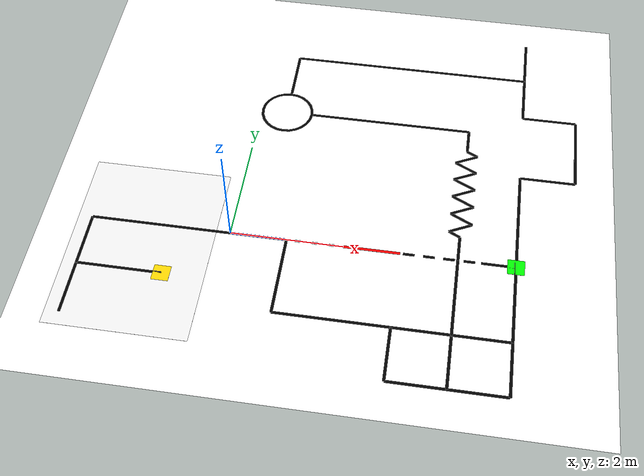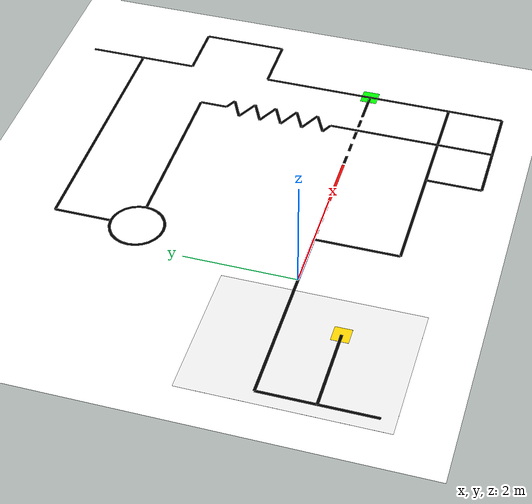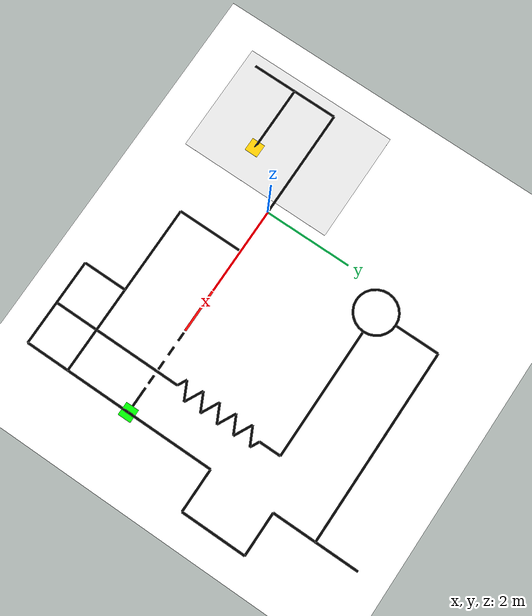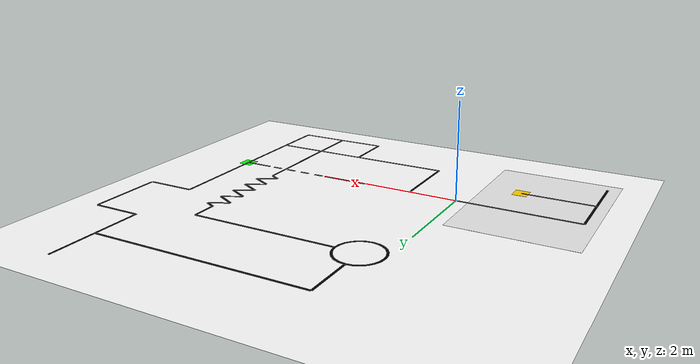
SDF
<?xml version="1.0" ?>
<sdf version="1.6">
  <world name="Map_Exact_As_Drawn_ProMax">

    <!-- แสงสว่างจัดเต็ม -->
    <light type="directional" name="sun">
      <cast_shadows>true</cast_shadows>
      <pose>0 0 10 0 0 0</pose>
      <diffuse>1.0 1.0 1.0 1</diffuse>
      <specular>0.5 0.5 0.5 1</specular>
      <direction>-0.5 0.1 -0.9</direction>
    </light>

    <!-- พื้นสีขาว 15x15 เมตร -->
    <model name="ground_plane">
      <static>true</static>
      <link name="link">
        <collision name="collision"><geometry><plane><normal>0 0 1</normal><size>15 15</size></plane></geometry></collision>
        <visual name="visual">
          <geometry><plane><normal>0 0 1</normal><size>15 15</size></plane></geometry>
          <material><ambient>1 1 1 1</ambient><diffuse>1 1 1 1</diffuse></material>
        </visual>
      </link>
    </model>

    <!-- ================= สนามแข่งสร้างจากรูปวาด 100% ================= -->
    <model name="drawn_track">
      <static>true</static>
      <link name="track_link">

        <!-- แถบสีเทาด้านซ้าย -->
        <visual name="bg_grey">
          <pose>-1.5 -0.5 0.0005 0 0 0</pose>
          <geometry><box><size>2.5 3.5 0.0005</size></box></geometry>
          <material><ambient>0.9 0.9 0.9 1</ambient><diffuse>0.9 0.9 0.9 1</diffuse></material>
        </visual>

        <!-- ================= 1. โซนซ้าย (จุดเริ่มต้นสีเหลือง) ================= -->
        <visual name="box_yellow">
          <pose>-1 -1 0.001 0 0 0</pose>
          <geometry><box><size>0.3 0.3 0.001</size></box></geometry>
          <material><ambient>1 0.8 0 1</ambient><diffuse>1 0.8 0 1</diffuse></material>
        </visual>
        <visual name="left_h_line">
          <pose>-1.75 -1 0.001 0 0 0</pose>
          <geometry><box><size>1.5 0.05 0.001</size></box></geometry>
          <material><ambient>0 0 0 1</ambient><diffuse>0 0 0 1</diffuse></material>
        </visual>
        <visual name="left_v_line_down">
          <pose>-2.5 -1.5 0.001 0 0 0</pose>
          <geometry><box><size>0.05 1.0 0.001</size></box></geometry>
          <material><ambient>0 0 0 1</ambient><diffuse>0 0 0 1</diffuse></material>
        </visual>
        <visual name="left_v_line_up">
          <pose>-2.5 -0.5 0.001 0 0 0</pose>
          <geometry><box><size>0.05 1.0 0.001</size></box></geometry>
          <material><ambient>0 0 0 1</ambient><diffuse>0 0 0 1</diffuse></material>
        </visual>
        <visual name="main_track_left">
          <pose>-1.25 0 0.001 0 0 0</pose>
          <geometry><box><size>2.5 0.05 0.001</size></box></geometry>
          <material><ambient>0 0 0 1</ambient><diffuse>0 0 0 1</diffuse></material>
        </visual>

        <!-- ================= 2. แกนกลาง (น้ำเงิน -> เส้นประห่างๆ -> แดง -> เส้นประ -> เขียว) ================= -->
        <visual name="line_blue">
          <pose>0.5 0 0.001 0 0 0</pose>
          <geometry><box><size>1.0 0.05 0.001</size></box></geometry>
          <material><ambient>0 0 1 1</ambient><diffuse>0 0 1 1</diffuse></material>
        </visual>

        <!-- !!! เส้นประแนวนอนแบบห่างๆ (แทนที่ซิกแซกเดิม) !!! -->
        <visual name="dash_mid_1">
          <pose>1.2 0 0.001 0 0 0</pose>
          <geometry><box><size>0.1 0.05 0.001</size></box></geometry>
          <material><ambient>0 0 0 1</ambient><diffuse>0 0 0 1</diffuse></material>
        </visual>
        <visual name="dash_mid_2">
          <pose>1.5 0 0.001 0 0 0</pose>
          <geometry><box><size>0.1 0.05 0.001</size></box></geometry>
          <material><ambient>0 0 0 1</ambient><diffuse>0 0 0 1</diffuse></material>
        </visual>
        <visual name="dash_mid_3">
          <pose>1.8 0 0.001 0 0 0</pose>
          <geometry><box><size>0.1 0.05 0.001</size></box></geometry>
          <material><ambient>0 0 0 1</ambient><diffuse>0 0 0 1</diffuse></material>
        </visual>

        <visual name="line_red">
          <pose>2.5 0 0.001 0 0 0</pose>
          <geometry><box><size>1.0 0.05 0.001</size></box></geometry>
          <material><ambient>1 0 0 1</ambient><diffuse>1 0 0 1</diffuse></material>
        </visual>

        <!-- เส้นประ (Gap) ชุดขวา -->
        <visual name="dash_1"><pose>3.15 0 0.001 0 0 0</pose><geometry><box><size>0.2 0.05 0.001</size></box></geometry><material><ambient>0 0 0 1</ambient><diffuse>0 0 0 1</diffuse></material></visual>
        <visual name="dash_2"><pose>3.5 0 0.001 0 0 0</pose><geometry><box><size>0.2 0.05 0.001</size></box></geometry><material><ambient>0 0 0 1</ambient><diffuse>0 0 0 1</diffuse></material></visual>
        <visual name="dash_3"><pose>3.85 0 0.001 0 0 0</pose><geometry><box><size>0.2 0.05 0.001</size></box></geometry><material><ambient>0 0 0 1</ambient><diffuse>0 0 0 1</diffuse></material></visual>
        <visual name="dash_4"><pose>4.2 0 0.001 0 0 0</pose><geometry><box><size>0.2 0.05 0.001</size></box></geometry><material><ambient>0 0 0 1</ambient><diffuse>0 0 0 1</diffuse></material></visual>
        <visual name="dash_5"><pose>4.7 0 0.001 0 0 0</pose><geometry><box><size>0.6 0.05 0.001</size></box></geometry><material><ambient>0 0 0 1</ambient><diffuse>0 0 0 1</diffuse></material></visual>

        <visual name="box_green">
          <pose>5 0 0.001 0 0 0</pose>
          <geometry><box><size>0.3 0.3 0.001</size></box></geometry>
          <material><ambient>0 1 0 1</ambient><diffuse>0 1 0 1</diffuse></material>
        </visual>

        <!-- ================= 3. ลูปและกล่องโซนล่าง ================= -->
        <visual name="bottom_loop_left"><pose>1 -0.75 0.001 0 0 0</pose><geometry><box><size>0.05 1.5 0.001</size></box></geometry><material><ambient>0 0 0 1</ambient><diffuse>0 0 0 1</diffuse></material></visual>
        <visual name="bottom_loop_bot"><pose>3 -1.5 0.001 0 0 0</pose><geometry><box><size>4.0 0.05 0.001</size></box></geometry><material><ambient>0 0 0 1</ambient><diffuse>0 0 0 1</diffuse></material></visual>
        <visual name="bottom_loop_right"><pose>5 -0.75 0.001 0 0 0</pose><geometry><box><size>0.05 1.5 0.001</size></box></geometry><material><ambient>0 0 0 1</ambient><diffuse>0 0 0 1</diffuse></material></visual>

        <!-- กล่องตารางด้านล่าง -->
        <visual name="grid_down_1"><pose>3 -2.0 0.001 0 0 0</pose><geometry><box><size>0.05 1.0 0.001</size></box></geometry><material><ambient>0 0 0 1</ambient><diffuse>0 0 0 1</diffuse></material></visual>
        <visual name="grid_down_2"><pose>4 -1.25 0.001 0 0 0</pose><geometry><box><size>0.05 2.5 0.001</size></box></geometry><material><ambient>0 0 0 1</ambient><diffuse>0 0 0 1</diffuse></material></visual>
        <visual name="grid_down_3"><pose>5 -2.0 0.001 0 0 0</pose><geometry><box><size>0.05 1.0 0.001</size></box></geometry><material><ambient>0 0 0 1</ambient><diffuse>0 0 0 1</diffuse></material></visual>
        <visual name="grid_bot_edge"><pose>4 -2.5 0.001 0 0 0</pose><geometry><box><size>2.0 0.05 0.001</size></box></geometry><material><ambient>0 0 0 1</ambient><diffuse>0 0 0 1</diffuse></material></visual>

        <!-- ================= 4. โซนบน (อัปเกรดหยักรัวๆ ยาวๆ) ================= -->
        <!-- เส้นตรงดันขึ้นก่อนเข้าโซนหยัก -->
        <visual name="top_up_1">
          <pose>4 0.25 0.001 0 0 0</pose>
          <geometry><box><size>0.05 0.5 0.001</size></box></geometry>
          <material><ambient>0 0 0 1</ambient><diffuse>0 0 0 1</diffuse></material>
        </visual>

        <!-- ตัวต้านทาน 11 จังหวะ หยักรัวๆ -->
        <visual name="res_z1"><pose>3.9 0.55 0.001 0 0 2.6779</pose><geometry><box><size>0.224 0.05 0.001</size></box></geometry><material><ambient>0 0 0 1</ambient><diffuse>0 0 0 1</diffuse></material></visual>
        <visual name="res_z2"><pose>4.0 0.7 0.001 0 0 0.4636</pose><geometry><box><size>0.447 0.05 0.001</size></box></geometry><material><ambient>0 0 0 1</ambient><diffuse>0 0 0 1</diffuse></material></visual>
        <visual name="res_z3"><pose>4.0 0.9 0.001 0 0 2.6779</pose><geometry><box><size>0.447 0.05 0.001</size></box></geometry><material><ambient>0 0 0 1</ambient><diffuse>0 0 0 1</diffuse></material></visual>
        <visual name="res_z4"><pose>4.0 1.1 0.001 0 0 0.4636</pose><geometry><box><size>0.447 0.05 0.001</size></box></geometry><material><ambient>0 0 0 1</ambient><diffuse>0 0 0 1</diffuse></material></visual>
        <visual name="res_z5"><pose>4.0 1.3 0.001 0 0 2.6779</pose><geometry><box><size>0.447 0.05 0.001</size></box></geometry><material><ambient>0 0 0 1</ambient><diffuse>0 0 0 1</diffuse></material></visual>
        <visual name="res_z6"><pose>4.0 1.5 0.001 0 0 0.4636</pose><geometry><box><size>0.447 0.05 0.001</size></box></geometry><material><ambient>0 0 0 1</ambient><diffuse>0 0 0 1</diffuse></material></visual>
        <visual name="res_z7"><pose>4.0 1.7 0.001 0 0 2.6779</pose><geometry><box><size>0.447 0.05 0.001</size></box></geometry><material><ambient>0 0 0 1</ambient><diffuse>0 0 0 1</diffuse></material></visual>
        <visual name="res_z8"><pose>4.0 1.9 0.001 0 0 0.4636</pose><geometry><box><size>0.447 0.05 0.001</size></box></geometry><material><ambient>0 0 0 1</ambient><diffuse>0 0 0 1</diffuse></material></visual>
        <visual name="res_z9"><pose>4.0 2.1 0.001 0 0 2.6779</pose><geometry><box><size>0.447 0.05 0.001</size></box></geometry><material><ambient>0 0 0 1</ambient><diffuse>0 0 0 1</diffuse></material></visual>
        <visual name="res_z10"><pose>4.0 2.3 0.001 0 0 0.4636</pose><geometry><box><size>0.447 0.05 0.001</size></box></geometry><material><ambient>0 0 0 1</ambient><diffuse>0 0 0 1</diffuse></material></visual>
        <visual name="res_z11"><pose>4.1 2.45 0.001 0 0 2.6779</pose><geometry><box><size>0.224 0.05 0.001</size></box></geometry><material><ambient>0 0 0 1</ambient><diffuse>0 0 0 1</diffuse></material></visual>

        <!-- เส้นตรงวิ่งไปหาวงกลม -->
        <visual name="top_up_2">
          <pose>4 2.75 0.001 0 0 0</pose>
          <geometry><box><size>0.05 0.5 0.001</size></box></geometry>
          <material><ambient>0 0 0 1</ambient><diffuse>0 0 0 1</diffuse></material>
        </visual>
        <visual name="top_left_to_circle">
          <pose>2.5 3 0.001 0 0 0</pose>
          <geometry><box><size>3.0 0.05 0.001</size></box></geometry>
          <material><ambient>0 0 0 1</ambient><diffuse>0 0 0 1</diffuse></material>
        </visual>

        <!-- วงกลมโดนัทเจาะรูตรงกลาง -->
        <visual name="circle_outer">
          <pose>0.5 3 0.001 0 0 0</pose>
          <geometry><cylinder><radius>0.5</radius><length>0.001</length></cylinder></geometry>
          <material><ambient>0 0 0 1</ambient><diffuse>0 0 0 1</diffuse></material>
        </visual>
        <visual name="circle_inner">
          <pose>0.5 3 0.002 0 0 0</pose>
          <geometry><cylinder><radius>0.45</radius><length>0.001</length></cylinder></geometry>
          <material><ambient>1 1 1 1</ambient><diffuse>1 1 1 1</diffuse></material>
        </visual>

        <!-- เส้นทางจากวงกลมวิ่งไปขวาบน -->
        <visual name="maze_up_1"><pose>0.5 4.0 0.001 0 0 0</pose><geometry><box><size>0.05 1.0 0.001</size></box></geometry><material><ambient>0 0 0 1</ambient><diffuse>0 0 0 1</diffuse></material></visual>
        <visual name="maze_right_1"><pose>2.75 4.5 0.001 0 0 0</pose><geometry><box><size>4.5 0.05 0.001</size></box></geometry><material><ambient>0 0 0 1</ambient><diffuse>0 0 0 1</diffuse></material></visual>

        <!-- ขอบขวาสุด ชี้ขึ้นฟ้า -->
        <visual name="maze_up_far_right"><pose>5 5.0 0.001 0 0 0</pose><geometry><box><size>0.05 1.0 0.001</size></box></geometry><material><ambient>0 0 0 1</ambient><diffuse>0 0 0 1</diffuse></material></visual>

        <!-- วกกลับลงมาหากล่องเขียว -->
        <visual name="maze_down_1"><pose>5 4.0 0.001 0 0 0</pose><geometry><box><size>0.05 1.0 0.001</size></box></geometry><material><ambient>0 0 0 1</ambient><diffuse>0 0 0 1</diffuse></material></visual>
        <visual name="maze_right_2"><pose>5.5 3.5 0.001 0 0 0</pose><geometry><box><size>1.0 0.05 0.001</size></box></geometry><material><ambient>0 0 0 1</ambient><diffuse>0 0 0 1</diffuse></material></visual>
        <visual name="maze_down_2"><pose>6 2.75 0.001 0 0 0</pose><geometry><box><size>0.05 1.5 0.001</size></box></geometry><material><ambient>0 0 0 1</ambient><diffuse>0 0 0 1</diffuse></material></visual>
        <visual name="maze_left_1"><pose>5.5 2.0 0.001 0 0 0</pose><geometry><box><size>1.0 0.05 0.001</size></box></geometry><material><ambient>0 0 0 1</ambient><diffuse>0 0 0 1</diffuse></material></visual>
        <visual name="maze_down_to_green"><pose>5 1.0 0.001 0 0 0</pose><geometry><box><size>0.05 2.0 0.001</size></box></geometry><material><ambient>0 0 0 1</ambient><diffuse>0 0 0 1</diffuse></material></visual>

      </link>
    </model>
  </world>
</sdf>
